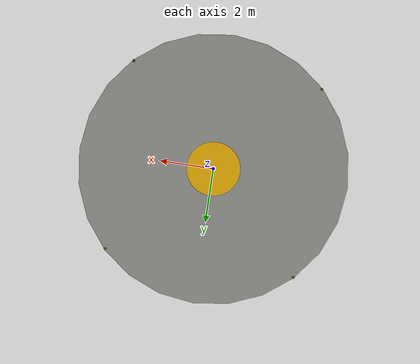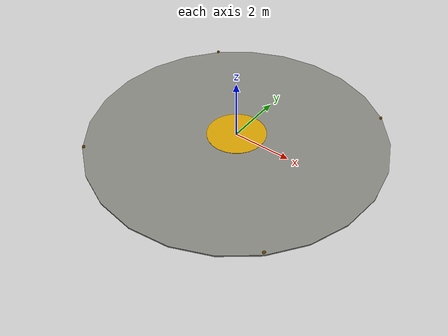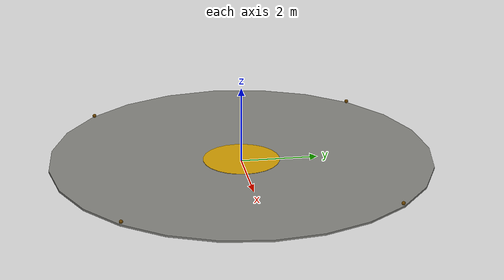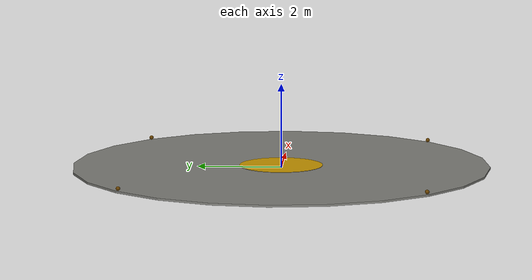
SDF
<?xml version="1.0"?>
<sdf version="1.9">
  <model name="landing_pad">
    <static>true</static>

    <link name="body">
      <!-- Main pad surface -->
      <visual name="pad_visual">
        <pose>0 0 0.025 0 0 0</pose>
        <geometry>
          <cylinder>
            <radius>5.0</radius>
            <length>0.05</length>
          </cylinder>
        </geometry>
        <material>
          <ambient>0.4 0.4 0.38 1</ambient>
          <diffuse>0.5 0.5 0.48 1</diffuse>
          <specular>0.15 0.15 0.15 1</specular>
        </material>
      </visual>

      <!-- Center marking circle -->
      <visual name="center_mark_visual">
        <pose>0 0 0.055 0 0 0</pose>
        <geometry>
          <cylinder>
            <radius>1.0</radius>
            <length>0.01</length>
          </cylinder>
        </geometry>
        <material>
          <ambient>0.7 0.5 0 1</ambient>
          <diffuse>0.8 0.6 0 1</diffuse>
        </material>
      </visual>

      <collision name="collision">
        <pose>0 0 0.025 0 0 0</pose>
        <geometry>
          <cylinder>
            <radius>5.0</radius>
            <length>0.05</length>
          </cylinder>
        </geometry>
      </collision>

      <!-- Boundary LED NE -->
      <visual name="boundary_led_ne_visual">
        <pose>3.5 3.5 0.1 0 0 0</pose>
        <geometry>
          <sphere><radius>0.05</radius></sphere>
        </geometry>
        <material>
          <ambient>0.4 0.25 0 1</ambient>
          <diffuse>0.4 0.25 0 1</diffuse>
          <emissive>0.6 0.4 0 1</emissive>
        </material>
      </visual>
      <light name="boundary_led_ne_light" type="point">
        <pose>3.5 3.5 0.15 0 0 0</pose>
        <diffuse>1 0.7 0 1</diffuse>
        <specular>0 0 0 1</specular>
        <attenuation>
          <range>5</range>
          <constant>1.0</constant>
          <linear>0.3</linear>
          <quadratic>0.1</quadratic>
        </attenuation>
      </light>

      <!-- Boundary LED NW -->
      <visual name="boundary_led_nw_visual">
        <pose>-3.5 3.5 0.1 0 0 0</pose>
        <geometry>
          <sphere><radius>0.05</radius></sphere>
        </geometry>
        <material>
          <ambient>0.4 0.25 0 1</ambient>
          <diffuse>0.4 0.25 0 1</diffuse>
          <emissive>0.6 0.4 0 1</emissive>
        </material>
      </visual>
      <light name="boundary_led_nw_light" type="point">
        <pose>-3.5 3.5 0.15 0 0 0</pose>
        <diffuse>1 0.7 0 1</diffuse>
        <specular>0 0 0 1</specular>
        <attenuation>
          <range>5</range>
          <constant>1.0</constant>
          <linear>0.3</linear>
          <quadratic>0.1</quadratic>
        </attenuation>
      </light>

      <!-- Boundary LED SE -->
      <visual name="boundary_led_se_visual">
        <pose>3.5 -3.5 0.1 0 0 0</pose>
        <geometry>
          <sphere><radius>0.05</radius></sphere>
        </geometry>
        <material>
          <ambient>0.4 0.25 0 1</ambient>
          <diffuse>0.4 0.25 0 1</diffuse>
          <emissive>0.6 0.4 0 1</emissive>
        </material>
      </visual>
      <light name="boundary_led_se_light" type="point">
        <pose>3.5 -3.5 0.15 0 0 0</pose>
        <diffuse>1 0.7 0 1</diffuse>
        <specular>0 0 0 1</specular>
        <attenuation>
          <range>5</range>
          <constant>1.0</constant>
          <linear>0.3</linear>
          <quadratic>0.1</quadratic>
        </attenuation>
      </light>

      <!-- Boundary LED SW -->
      <visual name="boundary_led_sw_visual">
        <pose>-3.5 -3.5 0.1 0 0 0</pose>
        <geometry>
          <sphere><radius>0.05</radius></sphere>
        </geometry>
        <material>
          <ambient>0.4 0.25 0 1</ambient>
          <diffuse>0.4 0.25 0 1</diffuse>
          <emissive>0.6 0.4 0 1</emissive>
        </material>
      </visual>
      <light name="boundary_led_sw_light" type="point">
        <pose>-3.5 -3.5 0.15 0 0 0</pose>
        <diffuse>1 0.7 0 1</diffuse>
        <specular>0 0 0 1</specular>
        <attenuation>
          <range>5</range>
          <constant>1.0</constant>
          <linear>0.3</linear>
          <quadratic>0.1</quadratic>
        </attenuation>
      </light>
    </link>

    <plugin name="boundary_leds" filename="libLedPlugin.so">
      <led_group_name>pad_boundary</led_group_name>

      <led name="ne">
        <visual_name>body/boundary_led_ne_visual</visual_name>
        <light_name>body/boundary_led_ne_light</light_name>
        <default_state>
          <color>0.4 0.25 0 1</color>
          <intensity>0.0</intensity>
        </default_state>
      </led>
      <led name="nw">
        <visual_name>body/boundary_led_nw_visual</visual_name>
        <light_name>body/boundary_led_nw_light</light_name>
        <default_state>
          <color>0.4 0.25 0 1</color>
          <intensity>0.0</intensity>
        </default_state>
      </led>
      <led name="se">
        <visual_name>body/boundary_led_se_visual</visual_name>
        <light_name>body/boundary_led_se_light</light_name>
        <default_state>
          <color>0.4 0.25 0 1</color>
          <intensity>0.0</intensity>
        </default_state>
      </led>
      <led name="sw">
        <visual_name>body/boundary_led_sw_visual</visual_name>
        <light_name>body/boundary_led_sw_light</light_name>
        <default_state>
          <color>0.4 0.25 0 1</color>
          <intensity>0.0</intensity>
        </default_state>
      </led>

      <startup_mode>standby</startup_mode>

      <mode name="standby">
        <step always_on="true">
          <color>1 0.7 0 1</color>
          <intensity>0.8</intensity>
        </step>
      </mode>

      <mode name="active">
        <step always_on="false">
          <color>1 1 1 1</color>
          <intensity>2.0</intensity>
          <on_time>0.25</on_time>
        </step>
        <step always_on="false">
          <color>0.3 0.3 0.3 1</color>
          <intensity>0.0</intensity>
          <on_time>0.25</on_time>
        </step>
      </mode>

      <mode name="emergency">
        <step always_on="false">
          <color>1 0 0 1</color>
          <intensity>2.0</intensity>
          <on_time>0.15</on_time>
        </step>
        <step always_on="false">
          <color>0.3 0 0 1</color>
          <intensity>0.0</intensity>
          <on_time>0.15</on_time>
        </step>
      </mode>
    </plugin>
  </model>
</sdf>
